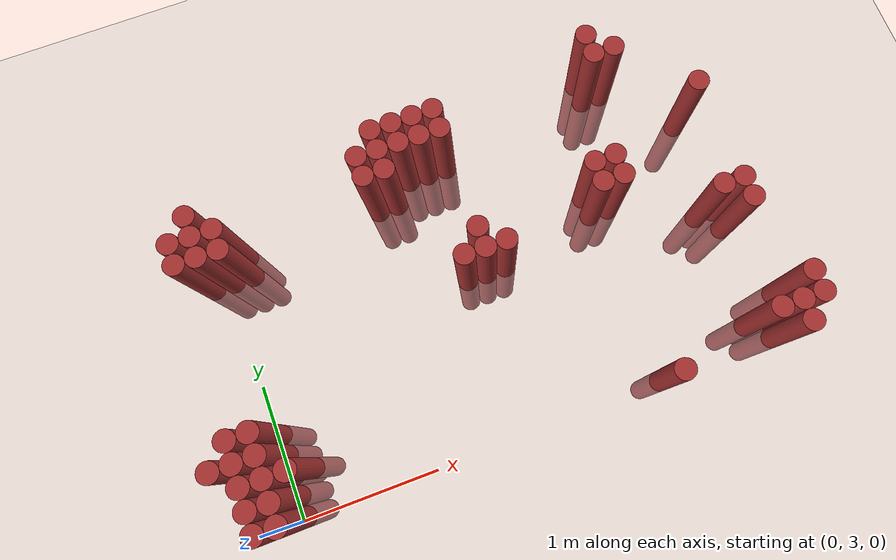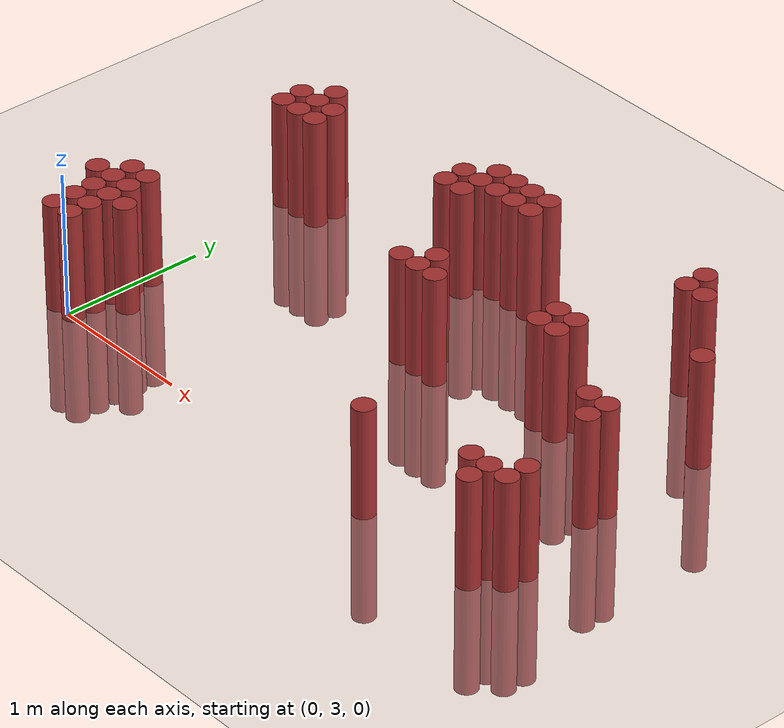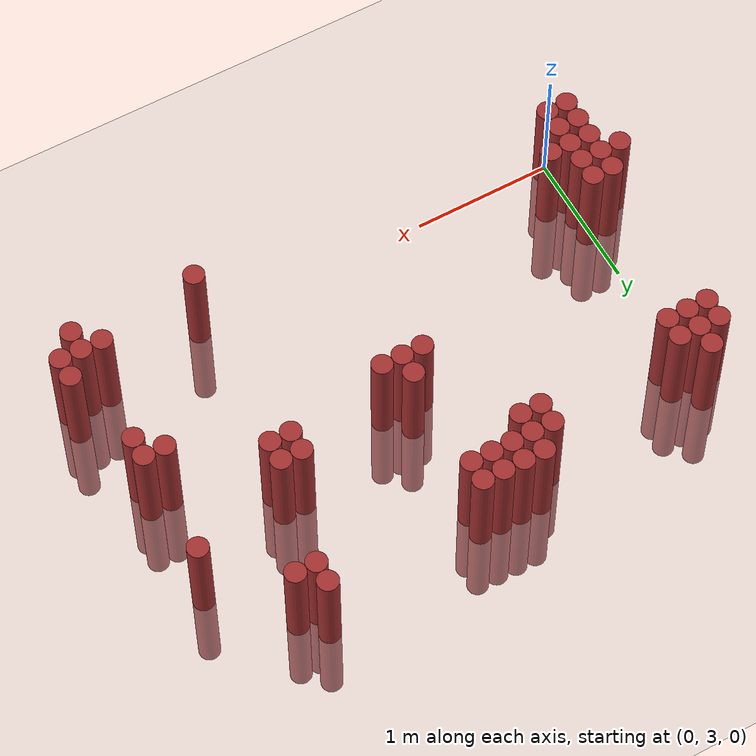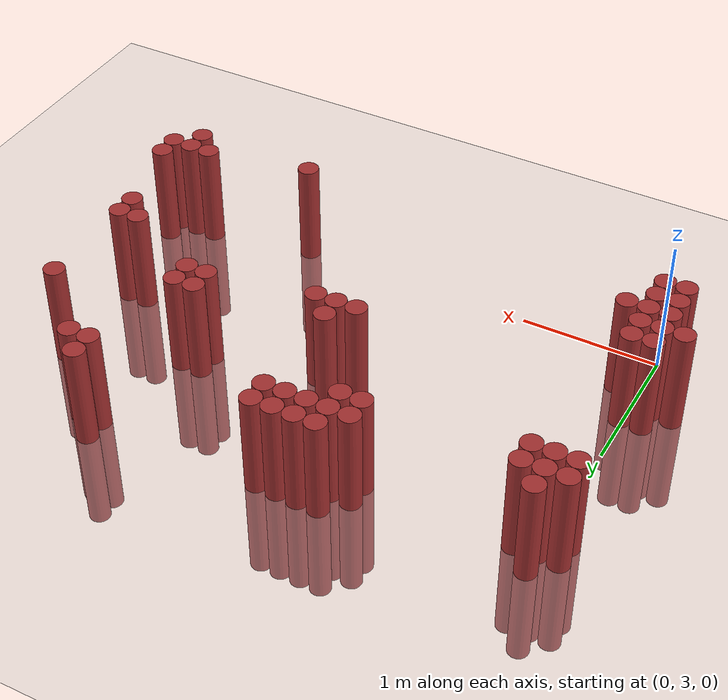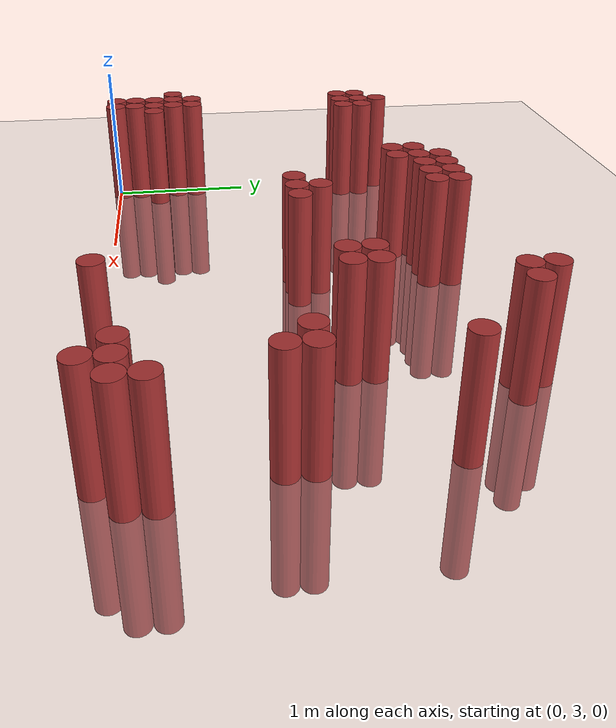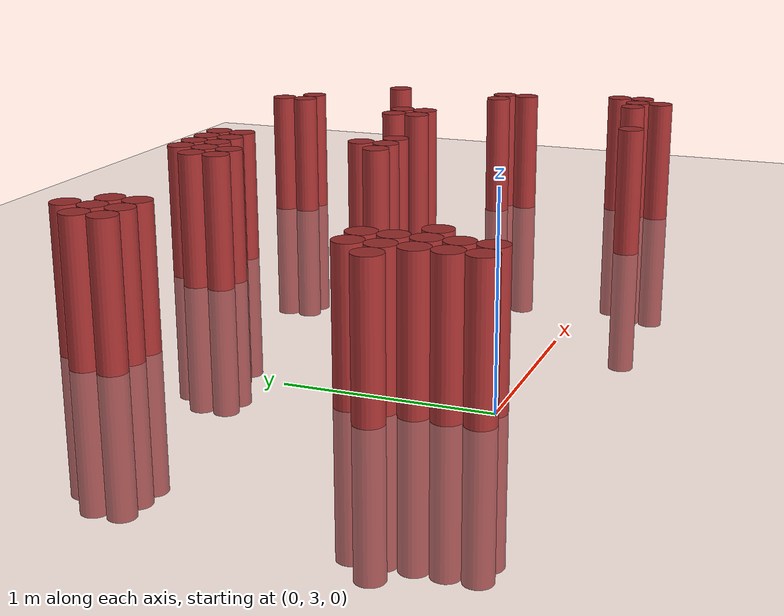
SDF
<sdf version="1.6">
 <world name="default">
  <model name="ground_plane">
   <static>1</static>
   <link name="link">
    <collision name="collision">
     <geometry><plane><normal>0 0 1</normal><size>100 100</size></plane></geometry>
     <surface><friction><ode><mu>100</mu><mu2>50</mu2></ode></friction></surface>
    </collision>
    <visual name="visual">
     <cast_shadows>0</cast_shadows>
     <geometry><plane><normal>0 0 1</normal><size>100 100</size></plane></geometry>
     <material>
      <script><uri>file://media/materials/scripts/gazebo.material</uri><name>Gazebo/Grey</name></script>
     </material>
    </visual>
   </link>
  </model>
  <model name="unit_cylinder_323">
   <static>1</static>
   <pose>-0.275000 3.475000 0.000000 0.000000 0.000000 0.000000</pose>
   <link name="link">
    <inertial>
     <mass>1</mass>
     <inertia><ixx>0.145833</ixx><ixy>0</ixy><ixz>0</ixz><iyy>0.145833</iyy><iyz>0</iyz><izz>0.125</izz></inertia>
    </inertial>
    <collision name="collision">
     <geometry><cylinder><radius>0.075000</radius><length>1.5</length></cylinder></geometry>
    </collision>
    <visual name="visual">
     <geometry><cylinder><radius>0.075000</radius><length>1.5</length></cylinder></geometry>
     <material>
      <ambient>0.648000 0.192000 0.192000 1</ambient>
      <diffuse>0.648000 0.192000 0.192000 1</diffuse>
     </material>
     <material>
      <script><name>Gazebo/Grey</name><uri>file://media/materials/scripts/gazebo.material</uri></script>
     </material>
    </visual>
   </link>
  </model>
  <model name="unit_cylinder_330">
   <static>1</static>
   <pose>-0.125000 3.025000 0.000000 0.000000 0.000000 0.000000</pose>
   <link name="link">
    <inertial>
     <mass>1</mass>
     <inertia><ixx>0.145833</ixx><ixy>0</ixy><ixz>0</ixz><iyy>0.145833</iyy><iyz>0</iyz><izz>0.125</izz></inertia>
    </inertial>
    <collision name="collision">
     <geometry><cylinder><radius>0.075000</radius><length>1.5</length></cylinder></geometry>
    </collision>
    <visual name="visual">
     <geometry><cylinder><radius>0.075000</radius><length>1.5</length></cylinder></geometry>
     <material>
      <ambient>0.648000 0.192000 0.192000 1</ambient>
      <diffuse>0.648000 0.192000 0.192000 1</diffuse>
     </material>
     <material>
      <script><name>Gazebo/Grey</name><uri>file://media/materials/scripts/gazebo.material</uri></script>
     </material>
    </visual>
   </link>
  </model>
  <model name="unit_cylinder_331">
   <static>1</static>
   <pose>-0.125000 3.175000 0.000000 0.000000 0.000000 0.000000</pose>
   <link name="link">
    <inertial>
     <mass>1</mass>
     <inertia><ixx>0.145833</ixx><ixy>0</ixy><ixz>0</ixz><iyy>0.145833</iyy><iyz>0</iyz><izz>0.125</izz></inertia>
    </inertial>
    <collision name="collision">
     <geometry><cylinder><radius>0.075000</radius><length>1.5</length></cylinder></geometry>
    </collision>
    <visual name="visual">
     <geometry><cylinder><radius>0.075000</radius><length>1.5</length></cylinder></geometry>
     <material>
      <ambient>0.648000 0.192000 0.192000 1</ambient>
      <diffuse>0.648000 0.192000 0.192000 1</diffuse>
     </material>
     <material>
      <script><name>Gazebo/Grey</name><uri>file://media/materials/scripts/gazebo.material</uri></script>
     </material>
    </visual>
   </link>
  </model>
  <model name="unit_cylinder_332">
   <static>1</static>
   <pose>-0.125000 3.325000 0.000000 0.000000 0.000000 0.000000</pose>
   <link name="link">
    <inertial>
     <mass>1</mass>
     <inertia><ixx>0.145833</ixx><ixy>0</ixy><ixz>0</ixz><iyy>0.145833</iyy><iyz>0</iyz><izz>0.125</izz></inertia>
    </inertial>
    <collision name="collision">
     <geometry><cylinder><radius>0.075000</radius><length>1.5</length></cylinder></geometry>
    </collision>
    <visual name="visual">
     <geometry><cylinder><radius>0.075000</radius><length>1.5</length></cylinder></geometry>
     <material>
      <ambient>0.648000 0.192000 0.192000 1</ambient>
      <diffuse>0.648000 0.192000 0.192000 1</diffuse>
     </material>
     <material>
      <script><name>Gazebo/Grey</name><uri>file://media/materials/scripts/gazebo.material</uri></script>
     </material>
    </visual>
   </link>
  </model>
  <model name="unit_cylinder_333">
   <static>1</static>
   <pose>-0.125000 3.475000 0.000000 0.000000 0.000000 0.000000</pose>
   <link name="link">
    <inertial>
     <mass>1</mass>
     <inertia><ixx>0.145833</ixx><ixy>0</ixy><ixz>0</ixz><iyy>0.145833</iyy><iyz>0</iyz><izz>0.125</izz></inertia>
    </inertial>
    <collision name="collision">
     <geometry><cylinder><radius>0.075000</radius><length>1.5</length></cylinder></geometry>
    </collision>
    <visual name="visual">
     <geometry><cylinder><radius>0.075000</radius><length>1.5</length></cylinder></geometry>
     <material>
      <ambient>0.648000 0.192000 0.192000 1</ambient>
      <diffuse>0.648000 0.192000 0.192000 1</diffuse>
     </material>
     <material>
      <script><name>Gazebo/Grey</name><uri>file://media/materials/scripts/gazebo.material</uri></script>
     </material>
    </visual>
   </link>
  </model>
  <model name="unit_cylinder_334">
   <static>1</static>
   <pose>-0.125000 3.625000 0.000000 0.000000 0.000000 0.000000</pose>
   <link name="link">
    <inertial>
     <mass>1</mass>
     <inertia><ixx>0.145833</ixx><ixy>0</ixy><ixz>0</ixz><iyy>0.145833</iyy><iyz>0</iyz><izz>0.125</izz></inertia>
    </inertial>
    <collision name="collision">
     <geometry><cylinder><radius>0.075000</radius><length>1.5</length></cylinder></geometry>
    </collision>
    <visual name="visual">
     <geometry><cylinder><radius>0.075000</radius><length>1.5</length></cylinder></geometry>
     <material>
      <ambient>0.648000 0.192000 0.192000 1</ambient>
      <diffuse>0.648000 0.192000 0.192000 1</diffuse>
     </material>
     <material>
      <script><name>Gazebo/Grey</name><uri>file://media/materials/scripts/gazebo.material</uri></script>
     </material>
    </visual>
   </link>
  </model>
  <model name="unit_cylinder_335">
   <static>1</static>
   <pose>-0.125000 4.825000 0.000000 0.000000 0.000000 0.000000</pose>
   <link name="link">
    <inertial>
     <mass>1</mass>
     <inertia><ixx>0.145833</ixx><ixy>0</ixy><ixz>0</ixz><iyy>0.145833</iyy><iyz>0</iyz><izz>0.125</izz></inertia>
    </inertial>
    <collision name="collision">
     <geometry><cylinder><radius>0.075000</radius><length>1.5</length></cylinder></geometry>
    </collision>
    <visual name="visual">
     <geometry><cylinder><radius>0.075000</radius><length>1.5</length></cylinder></geometry>
     <material>
      <ambient>0.648000 0.192000 0.192000 1</ambient>
      <diffuse>0.648000 0.192000 0.192000 1</diffuse>
     </material>
     <material>
      <script><name>Gazebo/Grey</name><uri>file://media/materials/scripts/gazebo.material</uri></script>
     </material>
    </visual>
   </link>
  </model>
  <model name="unit_cylinder_336">
   <static>1</static>
   <pose>-0.125000 4.975000 0.000000 0.000000 0.000000 0.000000</pose>
   <link name="link">
    <inertial>
     <mass>1</mass>
     <inertia><ixx>0.145833</ixx><ixy>0</ixy><ixz>0</ixz><iyy>0.145833</iyy><iyz>0</iyz><izz>0.125</izz></inertia>
    </inertial>
    <collision name="collision">
     <geometry><cylinder><radius>0.075000</radius><length>1.5</length></cylinder></geometry>
    </collision>
    <visual name="visual">
     <geometry><cylinder><radius>0.075000</radius><length>1.5</length></cylinder></geometry>
     <material>
      <ambient>0.648000 0.192000 0.192000 1</ambient>
      <diffuse>0.648000 0.192000 0.192000 1</diffuse>
     </material>
     <material>
      <script><name>Gazebo/Grey</name><uri>file://media/materials/scripts/gazebo.material</uri></script>
     </material>
    </visual>
   </link>
  </model>
  <model name="unit_cylinder_343">
   <static>1</static>
   <pose>0.025000 3.025000 0.000000 0.000000 0.000000 0.000000</pose>
   <link name="link">
    <inertial>
     <mass>1</mass>
     <inertia><ixx>0.145833</ixx><ixy>0</ixy><ixz>0</ixz><iyy>0.145833</iyy><iyz>0</iyz><izz>0.125</izz></inertia>
    </inertial>
    <collision name="collision">
     <geometry><cylinder><radius>0.075000</radius><length>1.5</length></cylinder></geometry>
    </collision>
    <visual name="visual">
     <geometry><cylinder><radius>0.075000</radius><length>1.5</length></cylinder></geometry>
     <material>
      <ambient>0.648000 0.192000 0.192000 1</ambient>
      <diffuse>0.648000 0.192000 0.192000 1</diffuse>
     </material>
     <material>
      <script><name>Gazebo/Grey</name><uri>file://media/materials/scripts/gazebo.material</uri></script>
     </material>
    </visual>
   </link>
  </model>
  <model name="unit_cylinder_344">
   <static>1</static>
   <pose>0.025000 3.175000 0.000000 0.000000 0.000000 0.000000</pose>
   <link name="link">
    <inertial>
     <mass>1</mass>
     <inertia><ixx>0.145833</ixx><ixy>0</ixy><ixz>0</ixz><iyy>0.145833</iyy><iyz>0</iyz><izz>0.125</izz></inertia>
    </inertial>
    <collision name="collision">
     <geometry><cylinder><radius>0.075000</radius><length>1.5</length></cylinder></geometry>
    </collision>
    <visual name="visual">
     <geometry><cylinder><radius>0.075000</radius><length>1.5</length></cylinder></geometry>
     <material>
      <ambient>0.648000 0.192000 0.192000 1</ambient>
      <diffuse>0.648000 0.192000 0.192000 1</diffuse>
     </material>
     <material>
      <script><name>Gazebo/Grey</name><uri>file://media/materials/scripts/gazebo.material</uri></script>
     </material>
    </visual>
   </link>
  </model>
  <model name="unit_cylinder_345">
   <static>1</static>
   <pose>0.025000 3.325000 0.000000 0.000000 0.000000 0.000000</pose>
   <link name="link">
    <inertial>
     <mass>1</mass>
     <inertia><ixx>0.145833</ixx><ixy>0</ixy><ixz>0</ixz><iyy>0.145833</iyy><iyz>0</iyz><izz>0.125</izz></inertia>
    </inertial>
    <collision name="collision">
     <geometry><cylinder><radius>0.075000</radius><length>1.5</length></cylinder></geometry>
    </collision>
    <visual name="visual">
     <geometry><cylinder><radius>0.075000</radius><length>1.5</length></cylinder></geometry>
     <material>
      <ambient>0.648000 0.192000 0.192000 1</ambient>
      <diffuse>0.648000 0.192000 0.192000 1</diffuse>
     </material>
     <material>
      <script><name>Gazebo/Grey</name><uri>file://media/materials/scripts/gazebo.material</uri></script>
     </material>
    </visual>
   </link>
  </model>
  <model name="unit_cylinder_346">
   <static>1</static>
   <pose>0.025000 3.475000 0.000000 0.000000 0.000000 0.000000</pose>
   <link name="link">
    <inertial>
     <mass>1</mass>
     <inertia><ixx>0.145833</ixx><ixy>0</ixy><ixz>0</ixz><iyy>0.145833</iyy><iyz>0</iyz><izz>0.125</izz></inertia>
    </inertial>
    <collision name="collision">
     <geometry><cylinder><radius>0.075000</radius><length>1.5</length></cylinder></geometry>
    </collision>
    <visual name="visual">
     <geometry><cylinder><radius>0.075000</radius><length>1.5</length></cylinder></geometry>
     <material>
      <ambient>0.648000 0.192000 0.192000 1</ambient>
      <diffuse>0.648000 0.192000 0.192000 1</diffuse>
     </material>
     <material>
      <script><name>Gazebo/Grey</name><uri>file://media/materials/scripts/gazebo.material</uri></script>
     </material>
    </visual>
   </link>
  </model>
  <model name="unit_cylinder_347">
   <static>1</static>
   <pose>0.025000 3.625000 0.000000 0.000000 0.000000 0.000000</pose>
   <link name="link">
    <inertial>
     <mass>1</mass>
     <inertia><ixx>0.145833</ixx><ixy>0</ixy><ixz>0</ixz><iyy>0.145833</iyy><iyz>0</iyz><izz>0.125</izz></inertia>
    </inertial>
    <collision name="collision">
     <geometry><cylinder><radius>0.075000</radius><length>1.5</length></cylinder></geometry>
    </collision>
    <visual name="visual">
     <geometry><cylinder><radius>0.075000</radius><length>1.5</length></cylinder></geometry>
     <material>
      <ambient>0.648000 0.192000 0.192000 1</ambient>
      <diffuse>0.648000 0.192000 0.192000 1</diffuse>
     </material>
     <material>
      <script><name>Gazebo/Grey</name><uri>file://media/materials/scripts/gazebo.material</uri></script>
     </material>
    </visual>
   </link>
  </model>
  <model name="unit_cylinder_348">
   <static>1</static>
   <pose>0.025000 4.825000 0.000000 0.000000 0.000000 0.000000</pose>
   <link name="link">
    <inertial>
     <mass>1</mass>
     <inertia><ixx>0.145833</ixx><ixy>0</ixy><ixz>0</ixz><iyy>0.145833</iyy><iyz>0</iyz><izz>0.125</izz></inertia>
    </inertial>
    <collision name="collision">
     <geometry><cylinder><radius>0.075000</radius><length>1.5</length></cylinder></geometry>
    </collision>
    <visual name="visual">
     <geometry><cylinder><radius>0.075000</radius><length>1.5</length></cylinder></geometry>
     <material>
      <ambient>0.648000 0.192000 0.192000 1</ambient>
      <diffuse>0.648000 0.192000 0.192000 1</diffuse>
     </material>
     <material>
      <script><name>Gazebo/Grey</name><uri>file://media/materials/scripts/gazebo.material</uri></script>
     </material>
    </visual>
   </link>
  </model>
  <model name="unit_cylinder_349">
   <static>1</static>
   <pose>0.025000 4.975000 0.000000 0.000000 0.000000 0.000000</pose>
   <link name="link">
    <inertial>
     <mass>1</mass>
     <inertia><ixx>0.145833</ixx><ixy>0</ixy><ixz>0</ixz><iyy>0.145833</iyy><iyz>0</iyz><izz>0.125</izz></inertia>
    </inertial>
    <collision name="collision">
     <geometry><cylinder><radius>0.075000</radius><length>1.5</length></cylinder></geometry>
    </collision>
    <visual name="visual">
     <geometry><cylinder><radius>0.075000</radius><length>1.5</length></cylinder></geometry>
     <material>
      <ambient>0.648000 0.192000 0.192000 1</ambient>
      <diffuse>0.648000 0.192000 0.192000 1</diffuse>
     </material>
     <material>
      <script><name>Gazebo/Grey</name><uri>file://media/materials/scripts/gazebo.material</uri></script>
     </material>
    </visual>
   </link>
  </model>
  <model name="unit_cylinder_350">
   <static>1</static>
   <pose>0.025000 5.125000 0.000000 0.000000 0.000000 0.000000</pose>
   <link name="link">
    <inertial>
     <mass>1</mass>
     <inertia><ixx>0.145833</ixx><ixy>0</ixy><ixz>0</ixz><iyy>0.145833</iyy><iyz>0</iyz><izz>0.125</izz></inertia>
    </inertial>
    <collision name="collision">
     <geometry><cylinder><radius>0.075000</radius><length>1.5</length></cylinder></geometry>
    </collision>
    <visual name="visual">
     <geometry><cylinder><radius>0.075000</radius><length>1.5</length></cylinder></geometry>
     <material>
      <ambient>0.648000 0.192000 0.192000 1</ambient>
      <diffuse>0.648000 0.192000 0.192000 1</diffuse>
     </material>
     <material>
      <script><name>Gazebo/Grey</name><uri>file://media/materials/scripts/gazebo.material</uri></script>
     </material>
    </visual>
   </link>
  </model>
  <model name="unit_cylinder_352">
   <static>1</static>
   <pose>0.175000 3.325000 0.000000 0.000000 0.000000 0.000000</pose>
   <link name="link">
    <inertial>
     <mass>1</mass>
     <inertia><ixx>0.145833</ixx><ixy>0</ixy><ixz>0</ixz><iyy>0.145833</iyy><iyz>0</iyz><izz>0.125</izz></inertia>
    </inertial>
    <collision name="collision">
     <geometry><cylinder><radius>0.075000</radius><length>1.5</length></cylinder></geometry>
    </collision>
    <visual name="visual">
     <geometry><cylinder><radius>0.075000</radius><length>1.5</length></cylinder></geometry>
     <material>
      <ambient>0.648000 0.192000 0.192000 1</ambient>
      <diffuse>0.648000 0.192000 0.192000 1</diffuse>
     </material>
     <material>
      <script><name>Gazebo/Grey</name><uri>file://media/materials/scripts/gazebo.material</uri></script>
     </material>
    </visual>
   </link>
  </model>
  <model name="unit_cylinder_353">
   <static>1</static>
   <pose>0.175000 4.825000 0.000000 0.000000 0.000000 0.000000</pose>
   <link name="link">
    <inertial>
     <mass>1</mass>
     <inertia><ixx>0.145833</ixx><ixy>0</ixy><ixz>0</ixz><iyy>0.145833</iyy><iyz>0</iyz><izz>0.125</izz></inertia>
    </inertial>
    <collision name="collision">
     <geometry><cylinder><radius>0.075000</radius><length>1.5</length></cylinder></geometry>
    </collision>
    <visual name="visual">
     <geometry><cylinder><radius>0.075000</radius><length>1.5</length></cylinder></geometry>
     <material>
      <ambient>0.648000 0.192000 0.192000 1</ambient>
      <diffuse>0.648000 0.192000 0.192000 1</diffuse>
     </material>
     <material>
      <script><name>Gazebo/Grey</name><uri>file://media/materials/scripts/gazebo.material</uri></script>
     </material>
    </visual>
   </link>
  </model>
  <model name="unit_cylinder_354">
   <static>1</static>
   <pose>0.175000 4.975000 0.000000 0.000000 0.000000 0.000000</pose>
   <link name="link">
    <inertial>
     <mass>1</mass>
     <inertia><ixx>0.145833</ixx><ixy>0</ixy><ixz>0</ixz><iyy>0.145833</iyy><iyz>0</iyz><izz>0.125</izz></inertia>
    </inertial>
    <collision name="collision">
     <geometry><cylinder><radius>0.075000</radius><length>1.5</length></cylinder></geometry>
    </collision>
    <visual name="visual">
     <geometry><cylinder><radius>0.075000</radius><length>1.5</length></cylinder></geometry>
     <material>
      <ambient>0.648000 0.192000 0.192000 1</ambient>
      <diffuse>0.648000 0.192000 0.192000 1</diffuse>
     </material>
     <material>
      <script><name>Gazebo/Grey</name><uri>file://media/materials/scripts/gazebo.material</uri></script>
     </material>
    </visual>
   </link>
  </model>
  <model name="unit_cylinder_364">
   <static>1</static>
   <pose>1.225000 4.975000 0.000000 0.000000 0.000000 0.000000</pose>
   <link name="link">
    <inertial>
     <mass>1</mass>
     <inertia><ixx>0.145833</ixx><ixy>0</ixy><ixz>0</ixz><iyy>0.145833</iyy><iyz>0</iyz><izz>0.125</izz></inertia>
    </inertial>
    <collision name="collision">
     <geometry><cylinder><radius>0.075000</radius><length>1.5</length></cylinder></geometry>
    </collision>
    <visual name="visual">
     <geometry><cylinder><radius>0.075000</radius><length>1.5</length></cylinder></geometry>
     <material>
      <ambient>0.648000 0.192000 0.192000 1</ambient>
      <diffuse>0.648000 0.192000 0.192000 1</diffuse>
     </material>
     <material>
      <script><name>Gazebo/Grey</name><uri>file://media/materials/scripts/gazebo.material</uri></script>
     </material>
    </visual>
   </link>
  </model>
  <model name="unit_cylinder_365">
   <static>1</static>
   <pose>1.225000 5.125000 0.000000 0.000000 0.000000 0.000000</pose>
   <link name="link">
    <inertial>
     <mass>1</mass>
     <inertia><ixx>0.145833</ixx><ixy>0</ixy><ixz>0</ixz><iyy>0.145833</iyy><iyz>0</iyz><izz>0.125</izz></inertia>
    </inertial>
    <collision name="collision">
     <geometry><cylinder><radius>0.075000</radius><length>1.5</length></cylinder></geometry>
    </collision>
    <visual name="visual">
     <geometry><cylinder><radius>0.075000</radius><length>1.5</length></cylinder></geometry>
     <material>
      <ambient>0.648000 0.192000 0.192000 1</ambient>
      <diffuse>0.648000 0.192000 0.192000 1</diffuse>
     </material>
     <material>
      <script><name>Gazebo/Grey</name><uri>file://media/materials/scripts/gazebo.material</uri></script>
     </material>
    </visual>
   </link>
  </model>
  <model name="unit_cylinder_372">
   <static>1</static>
   <pose>1.375000 4.975000 0.000000 0.000000 0.000000 0.000000</pose>
   <link name="link">
    <inertial>
     <mass>1</mass>
     <inertia><ixx>0.145833</ixx><ixy>0</ixy><ixz>0</ixz><iyy>0.145833</iyy><iyz>0</iyz><izz>0.125</izz></inertia>
    </inertial>
    <collision name="collision">
     <geometry><cylinder><radius>0.075000</radius><length>1.5</length></cylinder></geometry>
    </collision>
    <visual name="visual">
     <geometry><cylinder><radius>0.075000</radius><length>1.5</length></cylinder></geometry>
     <material>
      <ambient>0.648000 0.192000 0.192000 1</ambient>
      <diffuse>0.648000 0.192000 0.192000 1</diffuse>
     </material>
     <material>
      <script><name>Gazebo/Grey</name><uri>file://media/materials/scripts/gazebo.material</uri></script>
     </material>
    </visual>
   </link>
  </model>
  <model name="unit_cylinder_373">
   <static>1</static>
   <pose>1.375000 5.125000 0.000000 0.000000 0.000000 0.000000</pose>
   <link name="link">
    <inertial>
     <mass>1</mass>
     <inertia><ixx>0.145833</ixx><ixy>0</ixy><ixz>0</ixz><iyy>0.145833</iyy><iyz>0</iyz><izz>0.125</izz></inertia>
    </inertial>
    <collision name="collision">
     <geometry><cylinder><radius>0.075000</radius><length>1.5</length></cylinder></geometry>
    </collision>
    <visual name="visual">
     <geometry><cylinder><radius>0.075000</radius><length>1.5</length></cylinder></geometry>
     <material>
      <ambient>0.648000 0.192000 0.192000 1</ambient>
      <diffuse>0.648000 0.192000 0.192000 1</diffuse>
     </material>
     <material>
      <script><name>Gazebo/Grey</name><uri>file://media/materials/scripts/gazebo.material</uri></script>
     </material>
    </visual>
   </link>
  </model>
  <model name="unit_cylinder_374">
   <static>1</static>
   <pose>1.375000 5.275000 0.000000 0.000000 0.000000 0.000000</pose>
   <link name="link">
    <inertial>
     <mass>1</mass>
     <inertia><ixx>0.145833</ixx><ixy>0</ixy><ixz>0</ixz><iyy>0.145833</iyy><iyz>0</iyz><izz>0.125</izz></inertia>
    </inertial>
    <collision name="collision">
     <geometry><cylinder><radius>0.075000</radius><length>1.5</length></cylinder></geometry>
    </collision>
    <visual name="visual">
     <geometry><cylinder><radius>0.075000</radius><length>1.5</length></cylinder></geometry>
     <material>
      <ambient>0.648000 0.192000 0.192000 1</ambient>
      <diffuse>0.648000 0.192000 0.192000 1</diffuse>
     </material>
     <material>
      <script><name>Gazebo/Grey</name><uri>file://media/materials/scripts/gazebo.material</uri></script>
     </material>
    </visual>
   </link>
  </model>
  <model name="unit_cylinder_376">
   <static>1</static>
   <pose>1.525000 5.125000 0.000000 0.000000 0.000000 0.000000</pose>
   <link name="link">
    <inertial>
     <mass>1</mass>
     <inertia><ixx>0.145833</ixx><ixy>0</ixy><ixz>0</ixz><iyy>0.145833</iyy><iyz>0</iyz><izz>0.125</izz></inertia>
    </inertial>
    <collision name="collision">
     <geometry><cylinder><radius>0.075000</radius><length>1.5</length></cylinder></geometry>
    </collision>
    <visual name="visual">
     <geometry><cylinder><radius>0.075000</radius><length>1.5</length></cylinder></geometry>
     <material>
      <ambient>0.648000 0.192000 0.192000 1</ambient>
      <diffuse>0.648000 0.192000 0.192000 1</diffuse>
     </material>
     <material>
      <script><name>Gazebo/Grey</name><uri>file://media/materials/scripts/gazebo.material</uri></script>
     </material>
    </visual>
   </link>
  </model>
  <model name="unit_cylinder_377">
   <static>1</static>
   <pose>1.525000 5.275000 0.000000 0.000000 0.000000 0.000000</pose>
   <link name="link">
    <inertial>
     <mass>1</mass>
     <inertia><ixx>0.145833</ixx><ixy>0</ixy><ixz>0</ixz><iyy>0.145833</iyy><iyz>0</iyz><izz>0.125</izz></inertia>
    </inertial>
    <collision name="collision">
     <geometry><cylinder><radius>0.075000</radius><length>1.5</length></cylinder></geometry>
    </collision>
    <visual name="visual">
     <geometry><cylinder><radius>0.075000</radius><length>1.5</length></cylinder></geometry>
     <material>
      <ambient>0.648000 0.192000 0.192000 1</ambient>
      <diffuse>0.648000 0.192000 0.192000 1</diffuse>
     </material>
     <material>
      <script><name>Gazebo/Grey</name><uri>file://media/materials/scripts/gazebo.material</uri></script>
     </material>
    </visual>
   </link>
  </model>
  <model name="unit_cylinder_378">
   <static>1</static>
   <pose>1.675000 4.225000 0.000000 0.000000 0.000000 0.000000</pose>
   <link name="link">
    <inertial>
     <mass>1</mass>
     <inertia><ixx>0.145833</ixx><ixy>0</ixy><ixz>0</ixz><iyy>0.145833</iyy><iyz>0</iyz><izz>0.125</izz></inertia>
    </inertial>
    <collision name="collision">
     <geometry><cylinder><radius>0.075000</radius><length>1.5</length></cylinder></geometry>
    </collision>
    <visual name="visual">
     <geometry><cylinder><radius>0.075000</radius><length>1.5</length></cylinder></geometry>
     <material>
      <ambient>0.648000 0.192000 0.192000 1</ambient>
      <diffuse>0.648000 0.192000 0.192000 1</diffuse>
     </material>
     <material>
      <script><name>Gazebo/Grey</name><uri>file://media/materials/scripts/gazebo.material</uri></script>
     </material>
    </visual>
   </link>
  </model>
  <model name="unit_cylinder_379">
   <static>1</static>
   <pose>1.675000 5.125000 0.000000 0.000000 0.000000 0.000000</pose>
   <link name="link">
    <inertial>
     <mass>1</mass>
     <inertia><ixx>0.145833</ixx><ixy>0</ixy><ixz>0</ixz><iyy>0.145833</iyy><iyz>0</iyz><izz>0.125</izz></inertia>
    </inertial>
    <collision name="collision">
     <geometry><cylinder><radius>0.075000</radius><length>1.5</length></cylinder></geometry>
    </collision>
    <visual name="visual">
     <geometry><cylinder><radius>0.075000</radius><length>1.5</length></cylinder></geometry>
     <material>
      <ambient>0.648000 0.192000 0.192000 1</ambient>
      <diffuse>0.648000 0.192000 0.192000 1</diffuse>
     </material>
     <material>
      <script><name>Gazebo/Grey</name><uri>file://media/materials/scripts/gazebo.material</uri></script>
     </material>
    </visual>
   </link>
  </model>
  <model name="unit_cylinder_380">
   <static>1</static>
   <pose>1.675000 5.275000 0.000000 0.000000 0.000000 0.000000</pose>
   <link name="link">
    <inertial>
     <mass>1</mass>
     <inertia><ixx>0.145833</ixx><ixy>0</ixy><ixz>0</ixz><iyy>0.145833</iyy><iyz>0</iyz><izz>0.125</izz></inertia>
    </inertial>
    <collision name="collision">
     <geometry><cylinder><radius>0.075000</radius><length>1.5</length></cylinder></geometry>
    </collision>
    <visual name="visual">
     <geometry><cylinder><radius>0.075000</radius><length>1.5</length></cylinder></geometry>
     <material>
      <ambient>0.648000 0.192000 0.192000 1</ambient>
      <diffuse>0.648000 0.192000 0.192000 1</diffuse>
     </material>
     <material>
      <script><name>Gazebo/Grey</name><uri>file://media/materials/scripts/gazebo.material</uri></script>
     </material>
    </visual>
   </link>
  </model>
  <model name="unit_cylinder_383">
   <static>1</static>
   <pose>1.825000 4.225000 0.000000 0.000000 0.000000 0.000000</pose>
   <link name="link">
    <inertial>
     <mass>1</mass>
     <inertia><ixx>0.145833</ixx><ixy>0</ixy><ixz>0</ixz><iyy>0.145833</iyy><iyz>0</iyz><izz>0.125</izz></inertia>
    </inertial>
    <collision name="collision">
     <geometry><cylinder><radius>0.075000</radius><length>1.5</length></cylinder></geometry>
    </collision>
    <visual name="visual">
     <geometry><cylinder><radius>0.075000</radius><length>1.5</length></cylinder></geometry>
     <material>
      <ambient>0.648000 0.192000 0.192000 1</ambient>
      <diffuse>0.648000 0.192000 0.192000 1</diffuse>
     </material>
     <material>
      <script><name>Gazebo/Grey</name><uri>file://media/materials/scripts/gazebo.material</uri></script>
     </material>
    </visual>
   </link>
  </model>
  <model name="unit_cylinder_384">
   <static>1</static>
   <pose>1.825000 4.375000 0.000000 0.000000 0.000000 0.000000</pose>
   <link name="link">
    <inertial>
     <mass>1</mass>
     <inertia><ixx>0.145833</ixx><ixy>0</ixy><ixz>0</ixz><iyy>0.145833</iyy><iyz>0</iyz><izz>0.125</izz></inertia>
    </inertial>
    <collision name="collision">
     <geometry><cylinder><radius>0.075000</radius><length>1.5</length></cylinder></geometry>
    </collision>
    <visual name="visual">
     <geometry><cylinder><radius>0.075000</radius><length>1.5</length></cylinder></geometry>
     <material>
      <ambient>0.648000 0.192000 0.192000 1</ambient>
      <diffuse>0.648000 0.192000 0.192000 1</diffuse>
     </material>
     <material>
      <script><name>Gazebo/Grey</name><uri>file://media/materials/scripts/gazebo.material</uri></script>
     </material>
    </visual>
   </link>
  </model>
  <model name="unit_cylinder_385">
   <static>1</static>
   <pose>1.825000 5.125000 0.000000 0.000000 0.000000 0.000000</pose>
   <link name="link">
    <inertial>
     <mass>1</mass>
     <inertia><ixx>0.145833</ixx><ixy>0</ixy><ixz>0</ixz><iyy>0.145833</iyy><iyz>0</iyz><izz>0.125</izz></inertia>
    </inertial>
    <collision name="collision">
     <geometry><cylinder><radius>0.075000</radius><length>1.5</length></cylinder></geometry>
    </collision>
    <visual name="visual">
     <geometry><cylinder><radius>0.075000</radius><length>1.5</length></cylinder></geometry>
     <material>
      <ambient>0.648000 0.192000 0.192000 1</ambient>
      <diffuse>0.648000 0.192000 0.192000 1</diffuse>
     </material>
     <material>
      <script><name>Gazebo/Grey</name><uri>file://media/materials/scripts/gazebo.material</uri></script>
     </material>
    </visual>
   </link>
  </model>
  <model name="unit_cylinder_386">
   <static>1</static>
   <pose>1.825000 5.275000 0.000000 0.000000 0.000000 0.000000</pose>
   <link name="link">
    <inertial>
     <mass>1</mass>
     <inertia><ixx>0.145833</ixx><ixy>0</ixy><ixz>0</ixz><iyy>0.145833</iyy><iyz>0</iyz><izz>0.125</izz></inertia>
    </inertial>
    <collision name="collision">
     <geometry><cylinder><radius>0.075000</radius><length>1.5</length></cylinder></geometry>
    </collision>
    <visual name="visual">
     <geometry><cylinder><radius>0.075000</radius><length>1.5</length></cylinder></geometry>
     <material>
      <ambient>0.648000 0.192000 0.192000 1</ambient>
      <diffuse>0.648000 0.192000 0.192000 1</diffuse>
     </material>
     <material>
      <script><name>Gazebo/Grey</name><uri>file://media/materials/scripts/gazebo.material</uri></script>
     </material>
    </visual>
   </link>
  </model>
  <model name="unit_cylinder_391">
   <static>1</static>
   <pose>1.975000 4.225000 0.000000 0.000000 0.000000 0.000000</pose>
   <link name="link">
    <inertial>
     <mass>1</mass>
     <inertia><ixx>0.145833</ixx><ixy>0</ixy><ixz>0</ixz><iyy>0.145833</iyy><iyz>0</iyz><izz>0.125</izz></inertia>
    </inertial>
    <collision name="collision">
     <geometry><cylinder><radius>0.075000</radius><length>1.5</length></cylinder></geometry>
    </collision>
    <visual name="visual">
     <geometry><cylinder><radius>0.075000</radius><length>1.5</length></cylinder></geometry>
     <material>
      <ambient>0.648000 0.192000 0.192000 1</ambient>
      <diffuse>0.648000 0.192000 0.192000 1</diffuse>
     </material>
     <material>
      <script><name>Gazebo/Grey</name><uri>file://media/materials/scripts/gazebo.material</uri></script>
     </material>
    </visual>
   </link>
  </model>
  <model name="unit_cylinder_407">
   <static>1</static>
   <pose>2.725000 3.025000 0.000000 0.000000 0.000000 0.000000</pose>
   <link name="link">
    <inertial>
     <mass>1</mass>
     <inertia><ixx>0.145833</ixx><ixy>0</ixy><ixz>0</ixz><iyy>0.145833</iyy><iyz>0</iyz><izz>0.125</izz></inertia>
    </inertial>
    <collision name="collision">
     <geometry><cylinder><radius>0.075000</radius><length>1.5</length></cylinder></geometry>
    </collision>
    <visual name="visual">
     <geometry><cylinder><radius>0.075000</radius><length>1.5</length></cylinder></geometry>
     <material>
      <ambient>0.648000 0.192000 0.192000 1</ambient>
      <diffuse>0.648000 0.192000 0.192000 1</diffuse>
     </material>
     <material>
      <script><name>Gazebo/Grey</name><uri>file://media/materials/scripts/gazebo.material</uri></script>
     </material>
    </visual>
   </link>
  </model>
  <model name="unit_cylinder_408">
   <static>1</static>
   <pose>2.725000 4.375000 0.000000 0.000000 0.000000 0.000000</pose>
   <link name="link">
    <inertial>
     <mass>1</mass>
     <inertia><ixx>0.145833</ixx><ixy>0</ixy><ixz>0</ixz><iyy>0.145833</iyy><iyz>0</iyz><izz>0.125</izz></inertia>
    </inertial>
    <collision name="collision">
     <geometry><cylinder><radius>0.075000</radius><length>1.5</length></cylinder></geometry>
    </collision>
    <visual name="visual">
     <geometry><cylinder><radius>0.075000</radius><length>1.5</length></cylinder></geometry>
     <material>
      <ambient>0.648000 0.192000 0.192000 1</ambient>
      <diffuse>0.648000 0.192000 0.192000 1</diffuse>
     </material>
     <material>
      <script><name>Gazebo/Grey</name><uri>file://media/materials/scripts/gazebo.material</uri></script>
     </material>
    </visual>
   </link>
  </model>
  <model name="unit_cylinder_409">
   <static>1</static>
   <pose>2.725000 4.525000 0.000000 0.000000 0.000000 0.000000</pose>
   <link name="link">
    <inertial>
     <mass>1</mass>
     <inertia><ixx>0.145833</ixx><ixy>0</ixy><ixz>0</ixz><iyy>0.145833</iyy><iyz>0</iyz><izz>0.125</izz></inertia>
    </inertial>
    <collision name="collision">
     <geometry><cylinder><radius>0.075000</radius><length>1.5</length></cylinder></geometry>
    </collision>
    <visual name="visual">
     <geometry><cylinder><radius>0.075000</radius><length>1.5</length></cylinder></geometry>
     <material>
      <ambient>0.648000 0.192000 0.192000 1</ambient>
      <diffuse>0.648000 0.192000 0.192000 1</diffuse>
     </material>
     <material>
      <script><name>Gazebo/Grey</name><uri>file://media/materials/scripts/gazebo.material</uri></script>
     </material>
    </visual>
   </link>
  </model>
  <model name="unit_cylinder_413">
   <static>1</static>
   <pose>2.875000 4.375000 0.000000 0.000000 0.000000 0.000000</pose>
   <link name="link">
    <inertial>
     <mass>1</mass>
     <inertia><ixx>0.145833</ixx><ixy>0</ixy><ixz>0</ixz><iyy>0.145833</iyy><iyz>0</iyz><izz>0.125</izz></inertia>
    </inertial>
    <collision name="collision">
     <geometry><cylinder><radius>0.075000</radius><length>1.5</length></cylinder></geometry>
    </collision>
    <visual name="visual">
     <geometry><cylinder><radius>0.075000</radius><length>1.5</length></cylinder></geometry>
     <material>
      <ambient>0.648000 0.192000 0.192000 1</ambient>
      <diffuse>0.648000 0.192000 0.192000 1</diffuse>
     </material>
     <material>
      <script><name>Gazebo/Grey</name><uri>file://media/materials/scripts/gazebo.material</uri></script>
     </material>
    </visual>
   </link>
  </model>
  <model name="unit_cylinder_414">
   <static>1</static>
   <pose>2.875000 4.525000 0.000000 0.000000 0.000000 0.000000</pose>
   <link name="link">
    <inertial>
     <mass>1</mass>
     <inertia><ixx>0.145833</ixx><ixy>0</ixy><ixz>0</ixz><iyy>0.145833</iyy><iyz>0</iyz><izz>0.125</izz></inertia>
    </inertial>
    <collision name="collision">
     <geometry><cylinder><radius>0.075000</radius><length>1.5</length></cylinder></geometry>
    </collision>
    <visual name="visual">
     <geometry><cylinder><radius>0.075000</radius><length>1.5</length></cylinder></geometry>
     <material>
      <ambient>0.648000 0.192000 0.192000 1</ambient>
      <diffuse>0.648000 0.192000 0.192000 1</diffuse>
     </material>
     <material>
      <script><name>Gazebo/Grey</name><uri>file://media/materials/scripts/gazebo.material</uri></script>
     </material>
    </visual>
   </link>
  </model>
  <model name="unit_cylinder_416">
   <static>1</static>
   <pose>3.025000 5.275000 0.000000 0.000000 0.000000 0.000000</pose>
   <link name="link">
    <inertial>
     <mass>1</mass>
     <inertia><ixx>0.145833</ixx><ixy>0</ixy><ixz>0</ixz><iyy>0.145833</iyy><iyz>0</iyz><izz>0.125</izz></inertia>
    </inertial>
    <collision name="collision">
     <geometry><cylinder><radius>0.075000</radius><length>1.5</length></cylinder></geometry>
    </collision>
    <visual name="visual">
     <geometry><cylinder><radius>0.075000</radius><length>1.5</length></cylinder></geometry>
     <material>
      <ambient>0.648000 0.192000 0.192000 1</ambient>
      <diffuse>0.648000 0.192000 0.192000 1</diffuse>
     </material>
     <material>
      <script><name>Gazebo/Grey</name><uri>file://media/materials/scripts/gazebo.material</uri></script>
     </material>
    </visual>
   </link>
  </model>
  <model name="unit_cylinder_417">
   <static>1</static>
   <pose>3.025000 5.425000 0.000000 0.000000 0.000000 0.000000</pose>
   <link name="link">
    <inertial>
     <mass>1</mass>
     <inertia><ixx>0.145833</ixx><ixy>0</ixy><ixz>0</ixz><iyy>0.145833</iyy><iyz>0</iyz><izz>0.125</izz></inertia>
    </inertial>
    <collision name="collision">
     <geometry><cylinder><radius>0.075000</radius><length>1.5</length></cylinder></geometry>
    </collision>
    <visual name="visual">
     <geometry><cylinder><radius>0.075000</radius><length>1.5</length></cylinder></geometry>
     <material>
      <ambient>0.648000 0.192000 0.192000 1</ambient>
      <diffuse>0.648000 0.192000 0.192000 1</diffuse>
     </material>
     <material>
      <script><name>Gazebo/Grey</name><uri>file://media/materials/scripts/gazebo.material</uri></script>
     </material>
    </visual>
   </link>
  </model>
  <model name="unit_cylinder_418">
   <static>1</static>
   <pose>3.175000 5.275000 0.000000 0.000000 0.000000 0.000000</pose>
   <link name="link">
    <inertial>
     <mass>1</mass>
     <inertia><ixx>0.145833</ixx><ixy>0</ixy><ixz>0</ixz><iyy>0.145833</iyy><iyz>0</iyz><izz>0.125</izz></inertia>
    </inertial>
    <collision name="collision">
     <geometry><cylinder><radius>0.075000</radius><length>1.5</length></cylinder></geometry>
    </collision>
    <visual name="visual">
     <geometry><cylinder><radius>0.075000</radius><length>1.5</length></cylinder></geometry>
     <material>
      <ambient>0.648000 0.192000 0.192000 1</ambient>
      <diffuse>0.648000 0.192000 0.192000 1</diffuse>
     </material>
     <material>
      <script><name>Gazebo/Grey</name><uri>file://media/materials/scripts/gazebo.material</uri></script>
     </material>
    </visual>
   </link>
  </model>
  <model name="unit_cylinder_427">
   <static>1</static>
   <pose>3.475000 3.175000 0.000000 0.000000 0.000000 0.000000</pose>
   <link name="link">
    <inertial>
     <mass>1</mass>
     <inertia><ixx>0.145833</ixx><ixy>0</ixy><ixz>0</ixz><iyy>0.145833</iyy><iyz>0</iyz><izz>0.125</izz></inertia>
    </inertial>
    <collision name="collision">
     <geometry><cylinder><radius>0.075000</radius><length>1.5</length></cylinder></geometry>
    </collision>
    <visual name="visual">
     <geometry><cylinder><radius>0.075000</radius><length>1.5</length></cylinder></geometry>
     <material>
      <ambient>0.648000 0.192000 0.192000 1</ambient>
      <diffuse>0.648000 0.192000 0.192000 1</diffuse>
     </material>
     <material>
      <script><name>Gazebo/Grey</name><uri>file://media/materials/scripts/gazebo.material</uri></script>
     </material>
    </visual>
   </link>
  </model>
  <model name="unit_cylinder_428">
   <static>1</static>
   <pose>3.475000 4.075000 0.000000 0.000000 0.000000 0.000000</pose>
   <link name="link">
    <inertial>
     <mass>1</mass>
     <inertia><ixx>0.145833</ixx><ixy>0</ixy><ixz>0</ixz><iyy>0.145833</iyy><iyz>0</iyz><izz>0.125</izz></inertia>
    </inertial>
    <collision name="collision">
     <geometry><cylinder><radius>0.075000</radius><length>1.5</length></cylinder></geometry>
    </collision>
    <visual name="visual">
     <geometry><cylinder><radius>0.075000</radius><length>1.5</length></cylinder></geometry>
     <material>
      <ambient>0.648000 0.192000 0.192000 1</ambient>
      <diffuse>0.648000 0.192000 0.192000 1</diffuse>
     </material>
     <material>
      <script><name>Gazebo/Grey</name><uri>file://media/materials/scripts/gazebo.material</uri></script>
     </material>
    </visual>
   </link>
  </model>
  <model name="unit_cylinder_434">
   <static>1</static>
   <pose>3.625000 3.025000 0.000000 0.000000 0.000000 0.000000</pose>
   <link name="link">
    <inertial>
     <mass>1</mass>
     <inertia><ixx>0.145833</ixx><ixy>0</ixy><ixz>0</ixz><iyy>0.145833</iyy><iyz>0</iyz><izz>0.125</izz></inertia>
    </inertial>
    <collision name="collision">
     <geometry><cylinder><radius>0.075000</radius><length>1.5</length></cylinder></geometry>
    </collision>
    <visual name="visual">
     <geometry><cylinder><radius>0.075000</radius><length>1.5</length></cylinder></geometry>
     <material>
      <ambient>0.648000 0.192000 0.192000 1</ambient>
      <diffuse>0.648000 0.192000 0.192000 1</diffuse>
     </material>
     <material>
      <script><name>Gazebo/Grey</name><uri>file://media/materials/scripts/gazebo.material</uri></script>
     </material>
    </visual>
   </link>
  </model>
  <model name="unit_cylinder_435">
   <static>1</static>
   <pose>3.625000 3.175000 0.000000 0.000000 0.000000 0.000000</pose>
   <link name="link">
    <inertial>
     <mass>1</mass>
     <inertia><ixx>0.145833</ixx><ixy>0</ixy><ixz>0</ixz><iyy>0.145833</iyy><iyz>0</iyz><izz>0.125</izz></inertia>
    </inertial>
    <collision name="collision">
     <geometry><cylinder><radius>0.075000</radius><length>1.5</length></cylinder></geometry>
    </collision>
    <visual name="visual">
     <geometry><cylinder><radius>0.075000</radius><length>1.5</length></cylinder></geometry>
     <material>
      <ambient>0.648000 0.192000 0.192000 1</ambient>
      <diffuse>0.648000 0.192000 0.192000 1</diffuse>
     </material>
     <material>
      <script><name>Gazebo/Grey</name><uri>file://media/materials/scripts/gazebo.material</uri></script>
     </material>
    </visual>
   </link>
  </model>
  <model name="unit_cylinder_436">
   <static>1</static>
   <pose>3.625000 3.925000 0.000000 0.000000 0.000000 0.000000</pose>
   <link name="link">
    <inertial>
     <mass>1</mass>
     <inertia><ixx>0.145833</ixx><ixy>0</ixy><ixz>0</ixz><iyy>0.145833</iyy><iyz>0</iyz><izz>0.125</izz></inertia>
    </inertial>
    <collision name="collision">
     <geometry><cylinder><radius>0.075000</radius><length>1.5</length></cylinder></geometry>
    </collision>
    <visual name="visual">
     <geometry><cylinder><radius>0.075000</radius><length>1.5</length></cylinder></geometry>
     <material>
      <ambient>0.648000 0.192000 0.192000 1</ambient>
      <diffuse>0.648000 0.192000 0.192000 1</diffuse>
     </material>
     <material>
      <script><name>Gazebo/Grey</name><uri>file://media/materials/scripts/gazebo.material</uri></script>
     </material>
    </visual>
   </link>
  </model>
  <model name="unit_cylinder_437">
   <static>1</static>
   <pose>3.625000 4.075000 0.000000 0.000000 0.000000 0.000000</pose>
   <link name="link">
    <inertial>
     <mass>1</mass>
     <inertia><ixx>0.145833</ixx><ixy>0</ixy><ixz>0</ixz><iyy>0.145833</iyy><iyz>0</iyz><izz>0.125</izz></inertia>
    </inertial>
    <collision name="collision">
     <geometry><cylinder><radius>0.075000</radius><length>1.5</length></cylinder></geometry>
    </collision>
    <visual name="visual">
     <geometry><cylinder><radius>0.075000</radius><length>1.5</length></cylinder></geometry>
     <material>
      <ambient>0.648000 0.192000 0.192000 1</ambient>
      <diffuse>0.648000 0.192000 0.192000 1</diffuse>
     </material>
     <material>
      <script><name>Gazebo/Grey</name><uri>file://media/materials/scripts/gazebo.material</uri></script>
     </material>
    </visual>
   </link>
  </model>
  <model name="unit_cylinder_438">
   <static>1</static>
   <pose>3.625000 4.825000 0.000000 0.000000 0.000000 0.000000</pose>
   <link name="link">
    <inertial>
     <mass>1</mass>
     <inertia><ixx>0.145833</ixx><ixy>0</ixy><ixz>0</ixz><iyy>0.145833</iyy><iyz>0</iyz><izz>0.125</izz></inertia>
    </inertial>
    <collision name="collision">
     <geometry><cylinder><radius>0.075000</radius><length>1.5</length></cylinder></geometry>
    </collision>
    <visual name="visual">
     <geometry><cylinder><radius>0.075000</radius><length>1.5</length></cylinder></geometry>
     <material>
      <ambient>0.648000 0.192000 0.192000 1</ambient>
      <diffuse>0.648000 0.192000 0.192000 1</diffuse>
     </material>
     <material>
      <script><name>Gazebo/Grey</name><uri>file://media/materials/scripts/gazebo.material</uri></script>
     </material>
    </visual>
   </link>
  </model>
  <model name="unit_cylinder_450">
   <static>1</static>
   <pose>3.775000 3.175000 0.000000 0.000000 0.000000 0.000000</pose>
   <link name="link">
    <inertial>
     <mass>1</mass>
     <inertia><ixx>0.145833</ixx><ixy>0</ixy><ixz>0</ixz><iyy>0.145833</iyy><iyz>0</iyz><izz>0.125</izz></inertia>
    </inertial>
    <collision name="collision">
     <geometry><cylinder><radius>0.075000</radius><length>1.5</length></cylinder></geometry>
    </collision>
    <visual name="visual">
     <geometry><cylinder><radius>0.075000</radius><length>1.5</length></cylinder></geometry>
     <material>
      <ambient>0.648000 0.192000 0.192000 1</ambient>
      <diffuse>0.648000 0.192000 0.192000 1</diffuse>
     </material>
     <material>
      <script><name>Gazebo/Grey</name><uri>file://media/materials/scripts/gazebo.material</uri></script>
     </material>
    </visual>
   </link>
  </model>
  <model name="unit_cylinder_451">
   <static>1</static>
   <pose>3.775000 3.325000 0.000000 0.000000 0.000000 0.000000</pose>
   <link name="link">
    <inertial>
     <mass>1</mass>
     <inertia><ixx>0.145833</ixx><ixy>0</ixy><ixz>0</ixz><iyy>0.145833</iyy><iyz>0</iyz><izz>0.125</izz></inertia>
    </inertial>
    <collision name="collision">
     <geometry><cylinder><radius>0.075000</radius><length>1.5</length></cylinder></geometry>
    </collision>
    <visual name="visual">
     <geometry><cylinder><radius>0.075000</radius><length>1.5</length></cylinder></geometry>
     <material>
      <ambient>0.648000 0.192000 0.192000 1</ambient>
      <diffuse>0.648000 0.192000 0.192000 1</diffuse>
     </material>
     <material>
      <script><name>Gazebo/Grey</name><uri>file://media/materials/scripts/gazebo.material</uri></script>
     </material>
    </visual>
   </link>
  </model>
 </world>
</sdf>
